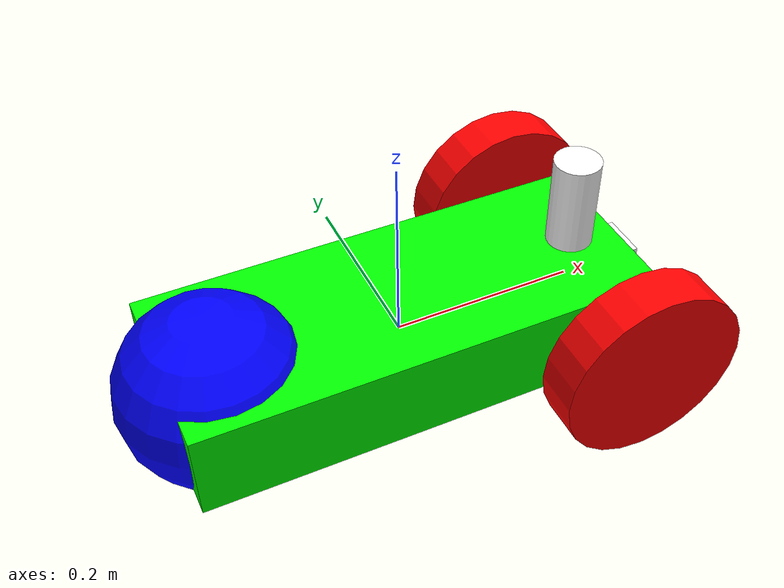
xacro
<?xml version="1.0"?>
<robot name="moj_robot" xmlns:xacro="https://ros.org/wiki/xacro">

  <material name="green">
    <color rgba="0 1 0 1"/>
  </material>

  <material name="red">
    <color rgba="1 0 0 1"/>
  </material>

  <material name="blue">
    <color rgba="0 0 1 1"/>
  </material>

  <material name="black">
    <color rgba="1 1 1 1"/>
  </material>

  <link name="obudowa">
    <visual>
      <geometry>
        <box size="0.5 0.2 0.1"/>
      </geometry>
      <origin rpy="0 0 0" xyz="0 0 0"/>
      <material name="green"/>
    </visual>
    <collision>
      <geometry>
        <box size="0.5 0.2 0.1"/>
      </geometry>
      <origin rpy="0 0 0" xyz="0 0 0"/>
    </collision>
    <inertial>
      <mass value="10.0"/>
      <origin rpy="0 0 0" xyz="0 0 0"/>
      <inertia ixx="2E-07" ixy="0" ixz="0" iyy="1E-06" iyz="0" izz="1E-06"/>
    </inertial>
  </link>

  <link name="kolo_lewe">
    <visual>
      <geometry>
        <cylinder radius="0.1" length="0.05"/>
      </geometry>
      <origin rpy="0 0 0" xyz="0 0 0"/>
      <material name="red"/>
    </visual>
    <collision>
      <geometry>
        <cylinder radius="0.1" length="0.05"/>
      </geometry>
      <origin rpy="0 0 0" xyz="0 0 0"/>
    </collision>
    <inertial>
      <mass value="2.5"/>
      <origin rpy="0 0 0" xyz="0 0 0"/>
      <inertia ixx="1E-05" ixy="0" ixz="0" iyy="1E-05" iyz="0" izz="1E-05"/>
    </inertial>
  </link>

  <joint name="z_kolo_lewe" type="continuous">
    <parent link="obudowa"/>
    <child link="kolo_lewe"/>
    <origin xyz="0.2 0.15 0" rpy="-1.57 0 0"/>
    <axis xyz="0 0 1"/>
  </joint>

  <link name="kolo_prawe">
    <visual>
      <geometry>
        <cylinder radius="0.1" length="0.05"/>
      </geometry>
      <origin rpy="0 0 0" xyz="0 0 0"/>
      <material name="red"/>
    </visual>
    <collision>
      <geometry>
        <cylinder radius="0.1" length="0.05"/>
      </geometry>
      <origin rpy="0 0 0" xyz="0 0 0"/>
    </collision>
    <inertial>
      <mass value="2.5"/>
      <origin rpy="0 0 0" xyz="0 0 0"/>
      <inertia ixx="1E-05" ixy="0" ixz="0" iyy="1E-05" iyz="0" izz="1E-05"/>
    </inertial>
  </link>

  <joint name="z_kolo_prawe" type="continuous">
    <parent link="obudowa"/>
    <child link="kolo_prawe"/>
    <origin xyz="0.2 -0.15 0" rpy="-1.57 0 0"/>
    <axis xyz="0 0 1"/>
  </joint>

  <link name="podpora">
    <visual>
      <geometry>
        <sphere radius="0.1"/>
      </geometry>
      <origin rpy="0 0 0" xyz="0 0 0"/>
      <material name="blue"/>
    </visual>
    <collision>
      <geometry>
        <sphere radius="0.1"/>
      </geometry>
      <origin rpy="0 0 0" xyz="0 0 0"/>
    </collision>
    <inertial>
      <mass value="1.0"/>
      <origin rpy="0 0 0" xyz="0 0 0"/>
      <inertia ixx="1E-05" ixy="0" ixz="0" iyy="1E-05" iyz="0" izz="1E-05"/>
    </inertial>
  </link>

  <joint name="z_podpora" type="fixed">
    <parent link="obudowa"/>
    <child link="podpora"/>
    <origin xyz="-0.2 0 0" rpy="0 0 0"/>
    <axis xyz="0 0 1"/>
  </joint>

  <link name="imu_link"/>

  <joint name="imu_joint" type="fixed">
    <parent link="obudowa"/>
    <child link="imu_link"/>
    <origin xyz="0.2 0.0 0.0" rpy="0.0 0.0 0.0"/>
    <axis xyz="0.0 0.0 1.0"/>
  </joint>

  <link name="lidar">
    <visual>
      <origin xyz="0.2 0 -0.05" rpy="0 0 0"/>
      <geometry>
        <cylinder radius="0.025" length="0.1"/>
      </geometry>
      <material name="black"/>
    </visual>

    <collision>
      <origin xyz="0.2 0 -0.05" rpy="0 0 0"/>
      <geometry>
        <cylinder radius="0.025" length="0.1"/>
      </geometry>
    </collision>

    <inertial>
      <origin xyz="0.2 0 -0.05" rpy="0 0 0"/>
      <mass value="0.1"/>
      <inertia ixx="0.001" ixy="0" ixz="0" iyy="0.001" iyz="0" izz="0.001"/>
    </inertial>
  </link>

  <joint name="lidar_joint" type="fixed">
    <parent link="obudowa"/>
    <child link="lidar"/>
    <origin xyz="0 0 0.15" rpy="0 0 0"/>
  </joint>

  <link name="kamera">
    <visual>
      <origin xyz="-0.0125 0 0" rpy="0 0 0"/>
      <geometry>
        <box size="0.025 0.05 0.05"/>
      </geometry>
      <material name="black"/>
    </visual>

    <collision>
      <origin xyz="-0.0125 0 0" rpy="0 0 0"/>
      <geometry>
        <box size="0.025 0.05 0.05"/>
      </geometry>
    </collision>

    <inertial>
      <origin xyz="0 0 -0.05" rpy="0 0 0"/>
      <mass value="0.1"/>
      <inertia ixx="0.001" ixy="0" ixz="0" iyy="0.001" iyz="0" izz="0.001"/>
    </inertial>
  </link>

  <joint name="kamera_joint" type="fixed">
    <parent link="obudowa"/>
    <child link="kamera"/>
    <origin xyz="0.275 0 0" rpy="0 0 0"/>
  </joint>

  <gazebo reference="kolo_lewe">
    <mu1>0.1</mu1>
    <mu2>0.1</mu2>
    <kp>500000.0</kp>
    <kd>10.0</kd>
    <minDepth>0.001</minDepth>
    <maxVel>0.1</maxVel>
    <fdir1>1 0 0</fdir1>
    <material>Gazebo/Green</material>
  </gazebo>

  <gazebo reference="kolo_prawe">
    <mu1>0.1</mu1>
    <mu2>0.1</mu2>
    <kp>500000.0</kp>
    <kd>10.0</kd>
    <minDepth>0.001</minDepth>
    <maxVel>0.1</maxVel>
    <fdir1>1 0 0</fdir1>
    <material>Gazebo/Red</material>
  </gazebo>

  <gazebo reference="podpora">
    <mu1>0.01</mu1>
    <mu2>0.01</mu2>
    <kp>500000.0</kp>
    <kd>10.0</kd>
    <minDepth>0.001</minDepth>
    <maxVel>0.1</maxVel>
    <fdir1>1 0 0</fdir1>
    <material>Gazebo/Blue</material>
  </gazebo>

  <gazebo reference="imu_link">
    <sensor type="imu" name="imu">
      <always_on>true</always_on>
      <visualize>true</visualize>
    </sensor>
    <material>Gazebo/FlatBlack</material>
  </gazebo>

  <gazebo reference="lidar">
    <material>Gazebo/FlatBlack</material>
    <sensor type="ray" name="lds_lfcd_sensor">
      <pose>0 0 0 0 0 0</pose>
      <visualize>true</visualize>
      <update_rate>5</update_rate>
      <ray>
        <scan>
          <horizontal>
            <samples>360</samples>
            <resolution>1</resolution>
            <min_angle>0.0</min_angle>
            <max_angle>6.28319</max_angle>
          </horizontal>
        </scan>
        <range>
          <min>0.120</min>
          <max>16</max>
          <resolution>0.01</resolution>
        </range>
        <noise>
          <type>gaussian</type>
          <mean>0.0</mean>
          <stddev>0.02</stddev>
        </noise>
      </ray>
      <plugin name="gazebo_ros_lds_lfcd_controller" filename="libgazebo_ros_laser.so">
        <topicName>laser_scan</topicName>
        <frameName>lidar</frameName>
      </plugin>
    </sensor>
</gazebo>

<gazebo reference="kamera">
    <sensor type="camera" name="camera1">
      <update_rate>30.0</update_rate>
      <camera name="head">
        <horizontal_fov>1.3962634</horizontal_fov>
        <image>
          <width>640</width>
          <height>480</height>
          <format>R8G8B8</format>
        </image>
        <clip>
          <near>0.02</near>
          <far>300</far>
        </clip>
        <noise>
          <type>gaussian</type>
          <mean>0.0</mean>
          <stddev>0.007</stddev>
        </noise>
      </camera>
      <plugin name="camera_controller" filename="libgazebo_ros_camera.so">
        <alwaysOn>true</alwaysOn>
        <updateRate>0.0</updateRate>
        <cameraName>camera1</cameraName>
        <imageTopicName>image_raw</imageTopicName>
        <cameraInfoTopicName>camera_info</cameraInfoTopicName>
        <frameName>kamera</frameName>
        <hackBaseline>0.07</hackBaseline>
        <distortionK1>0.0</distortionK1>
        <distortionK2>0.0</distortionK2>
        <distortionK3>0.0</distortionK3>
        <distortionT1>0.0</distortionT1>
        <distortionT2>0.0</distortionT2>
      </plugin>
      <visualize>true</visualize>
    </sensor>
  </gazebo>

  <gazebo>
    <plugin name="moj_kontroler" filename="libgazebo_ros_diff_drive.so">
      <commandTopic>cmd_vel</commandTopic>
      <odometryTopic>odom</odometryTopic>
      <odometryFrame>odom</odometryFrame>
      <odometrySource>world</odometrySource>
      <publishOdomTF>true</publishOdomTF>
      <robotBaseFrame>obudowa</robotBaseFrame>
      <publishWheelTF>false</publishWheelTF>
      <publishTf>true</publishTf>
      <publishWheelJointState>true</publishWheelJointState>
      <legacyMode>false</legacyMode>
      <updateRate>30</updateRate>
      <leftJoint>z_kolo_lewe</leftJoint>
      <rightJoint>z_kolo_prawe</rightJoint>
      <wheelSeparation>0.3</wheelSeparation>
      <wheelDiameter>0.2</wheelDiameter>
      <wheelAcceleration>1</wheelAcceleration>
      <wheelTorque>10</wheelTorque>
      <rosDebugLevel>na</rosDebugLevel>
    </plugin>
    <plugin name="imu_plugin" filename="libgazebo_ros_imu.so">
      <alwaysOn>true</alwaysOn>
      <bodyName>imu_link</bodyName>
      <frameName>imu_link</frameName>
      <topicName>imu</topicName>
      <serviceName>imu_service</serviceName>
      <gaussianNoise>0.0</gaussianNoise>
      <updateRate>200</updateRate>
      <imu>
        <noise>
          <type>gaussian</type>
          <rate>
            <mean>0.0</mean>
            <stddev>2e-4</stddev>
            <bias_mean>0.0000075</bias_mean>
            <bias_stddev>0.0000008</bias_stddev>
          </rate>
          <accel>
            <mean>0.0</mean>
            <stddev>1.7e-2</stddev>
            <bias_mean>0.1</bias_mean>
            <bias_stddev>0.001</bias_stddev>
          </accel>
        </noise>
      </imu>
    </plugin>
  </gazebo>

</robot>
